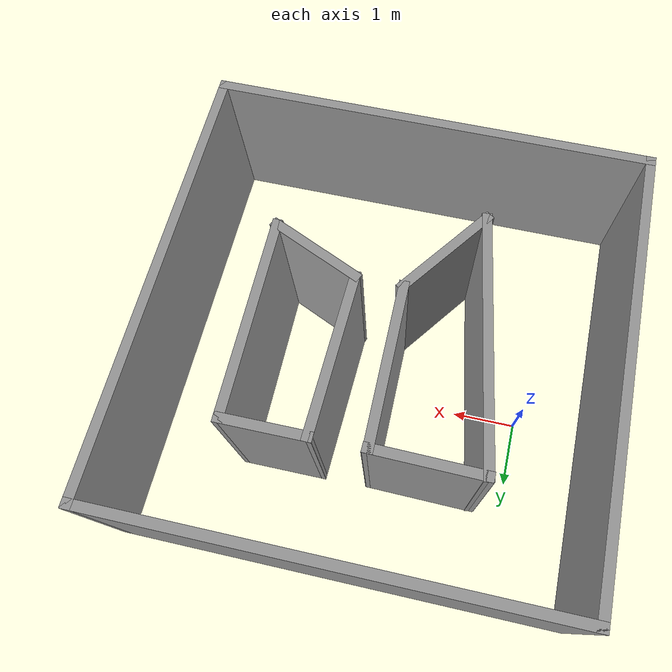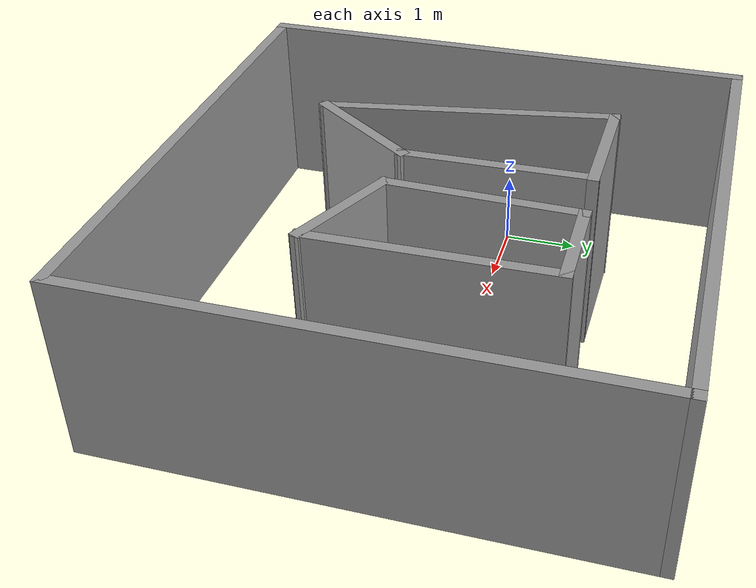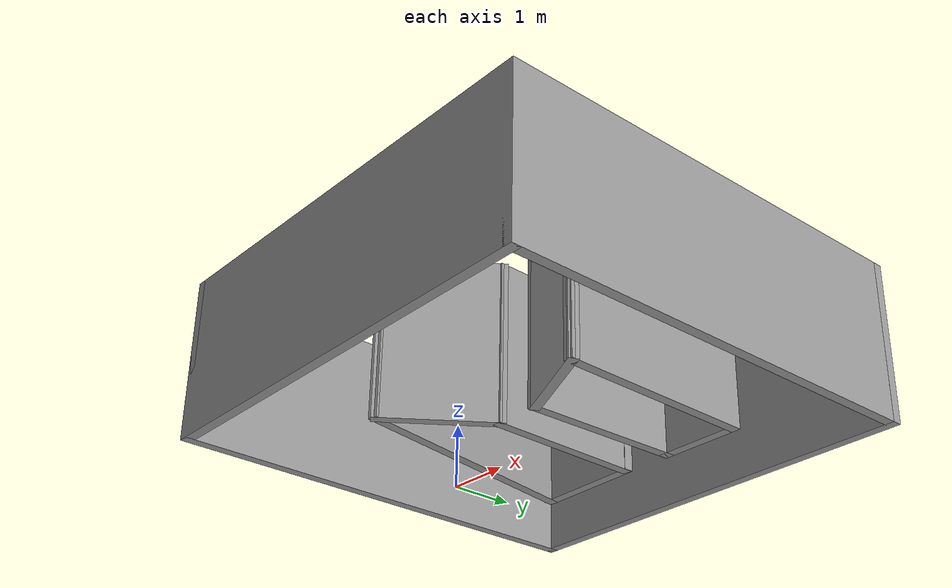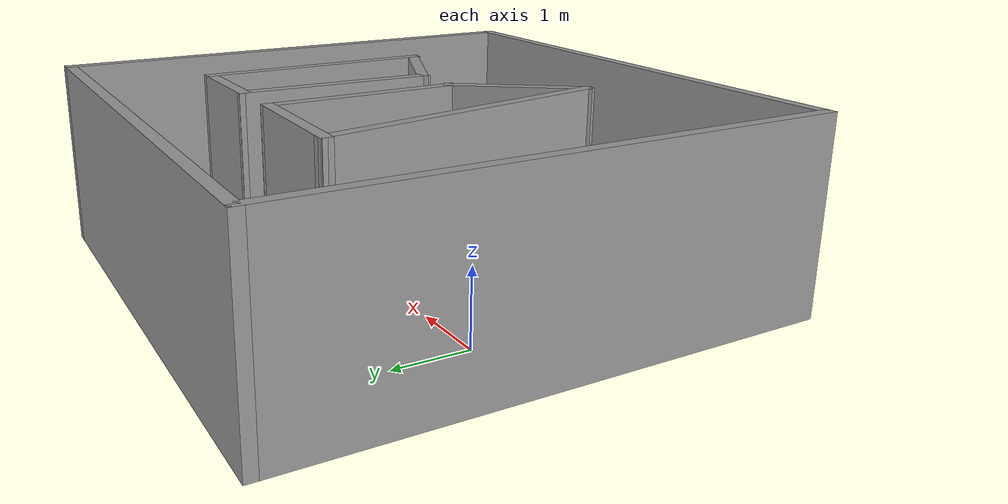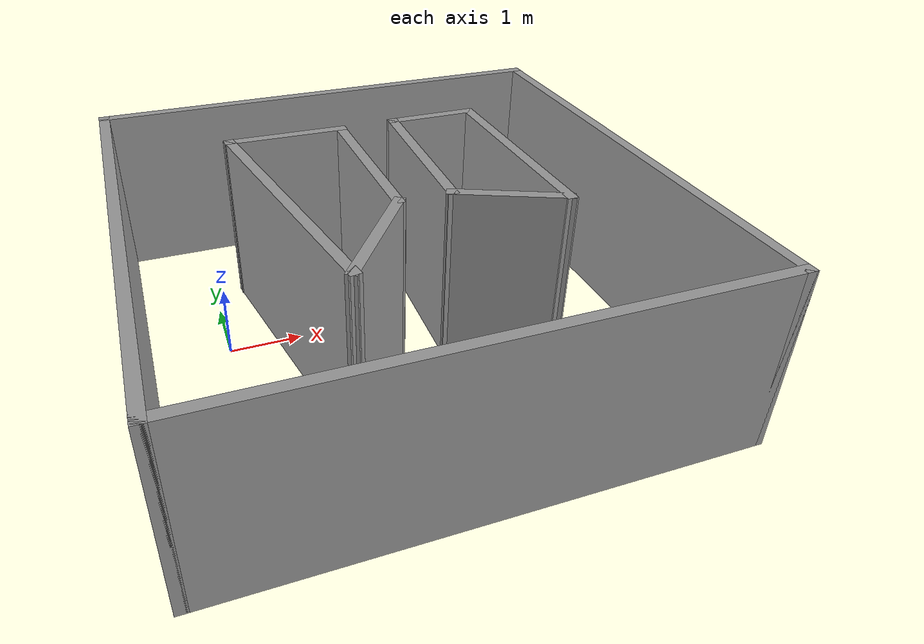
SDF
<?xml version='1.0'?>
<sdf version='1.7'>
  <model name='like_maze_map7'>
    <pose>2.28049 -0.451062 0 0 -0 0</pose>
    <link name='Wall_0'>
      <collision name='Wall_0_Collision'>
        <geometry>
          <box>
            <size>7 0.15 2.5</size>
          </box>
        </geometry>
        <pose>0 0 1.25 0 -0 0</pose>
      </collision>
      <visual name='Wall_0_Visual'>
        <pose>0 0 1.25 0 -0 0</pose>
        <geometry>
          <box>
            <size>7 0.15 2.5</size>
          </box>
        </geometry>
        <material>
          <script>
            <uri>file://media/materials/scripts/gazebo.material</uri>
            <name>Gazebo/Grey</name>
          </script>
          <ambient>1 1 1 1</ambient>
        </material>
        <meta>
          <layer>0</layer>
        </meta>
      </visual>
      <pose>-3.425 -0 0 0 -0 -1.5708</pose>
    </link>
    <link name='Wall_2'>
      <collision name='Wall_2_Collision'>
        <geometry>
          <box>
            <size>7 0.15 2.5</size>
          </box>
        </geometry>
        <pose>0 0 1.25 0 -0 0</pose>
      </collision>
      <visual name='Wall_2_Visual'>
        <pose>0 0 1.25 0 -0 0</pose>
        <geometry>
          <box>
            <size>7 0.15 2.5</size>
          </box>
        </geometry>
        <material>
          <script>
            <uri>file://media/materials/scripts/gazebo.material</uri>
            <name>Gazebo/Grey</name>
          </script>
          <ambient>1 1 1 1</ambient>
        </material>
        <meta>
          <layer>0</layer>
        </meta>
      </visual>
      <pose>0 -3.425 0 0 -0 0</pose>
    </link>
    <link name='Wall_24'>
      <collision name='Wall_24_Collision'>
        <geometry>
          <box>
            <size>4.01538 0.15 2.5</size>
          </box>
        </geometry>
        <pose>0 0 1.25 0 -0 0</pose>
      </collision>
      <visual name='Wall_24_Visual'>
        <pose>0 0 1.25 0 -0 0</pose>
        <geometry>
          <box>
            <size>4.01538 0.15 2.5</size>
          </box>
        </geometry>
        <material>
          <script>
            <uri>file://media/materials/scripts/gazebo.material</uri>
            <name>Gazebo/Grey</name>
          </script>
          <ambient>1 1 1 1</ambient>
        </material>
        <meta>
          <layer>0</layer>
        </meta>
      </visual>
      <pose>-1.45779 0.017957 0 0 -0 1.74371</pose>
    </link>
    <link name='Wall_3'>
      <collision name='Wall_3_Collision'>
        <geometry>
          <box>
            <size>7 0.15 2.5</size>
          </box>
        </geometry>
        <pose>0 0 1.25 0 -0 0</pose>
      </collision>
      <visual name='Wall_3_Visual'>
        <pose>0 0 1.25 0 -0 0</pose>
        <geometry>
          <box>
            <size>7 0.15 2.5</size>
          </box>
        </geometry>
        <material>
          <script>
            <uri>file://media/materials/scripts/gazebo.material</uri>
            <name>Gazebo/Grey</name>
          </script>
          <ambient>1 1 1 1</ambient>
        </material>
        <meta>
          <layer>0</layer>
        </meta>
      </visual>
      <pose>3.425 -0 0 0 -0 1.5708</pose>
    </link>
    <link name='Wall_35'>
      <collision name='Wall_35_Collision'>
        <geometry>
          <box>
            <size>3.18404 0.15 2.5</size>
          </box>
        </geometry>
        <pose>0 0 1.25 0 -0 0</pose>
      </collision>
      <visual name='Wall_35_Visual'>
        <pose>0 0 1.25 0 -0 0</pose>
        <geometry>
          <box>
            <size>3.18404 0.15 2.5</size>
          </box>
        </geometry>
        <material>
          <script>
            <uri>file://media/materials/scripts/gazebo.material</uri>
            <name>Gazebo/Grey</name>
          </script>
          <ambient>1 1 1 1</ambient>
        </material>
        <meta>
          <layer>0</layer>
        </meta>
      </visual>
      <pose>1.88979 0.402701 0 0 -0 -1.56007</pose>
    </link>
    <link name='Wall_37'>
      <collision name='Wall_37_Collision'>
        <geometry>
          <box>
            <size>1.60792 0.15 2.5</size>
          </box>
        </geometry>
        <pose>0 0 1.25 0 -0 0</pose>
      </collision>
      <visual name='Wall_37_Visual'>
        <pose>0 0 1.25 0 -0 0</pose>
        <geometry>
          <box>
            <size>1.60792 0.15 2.5</size>
          </box>
        </geometry>
        <material>
          <script>
            <uri>file://media/materials/scripts/gazebo.material</uri>
            <name>Gazebo/Grey</name>
          </script>
          <ambient>1 1 1 1</ambient>
        </material>
        <meta>
          <layer>0</layer>
        </meta>
      </visual>
      <pose>1.23924 -0.819693 0 0 -0 -0.415872</pose>
    </link>
    <link name='Wall_4'>
      <collision name='Wall_4_Collision'>
        <geometry>
          <box>
            <size>7 0.15 2.5</size>
          </box>
        </geometry>
        <pose>0 0 1.25 0 -0 0</pose>
      </collision>
      <visual name='Wall_4_Visual'>
        <pose>0 0 1.25 0 -0 0</pose>
        <geometry>
          <box>
            <size>7 0.15 2.5</size>
          </box>
        </geometry>
        <material>
          <script>
            <uri>file://media/materials/scripts/gazebo.material</uri>
            <name>Gazebo/Grey</name>
          </script>
          <ambient>1 1 1 1</ambient>
        </material>
        <meta>
          <layer>0</layer>
        </meta>
      </visual>
      <pose>0 3.425 0 0 -0 3.14159</pose>
    </link>
    <link name='Wall_41'>
      <collision name='Wall_41_Collision'>
        <geometry>
          <box>
            <size>1.77465 0.15 2.5</size>
          </box>
        </geometry>
        <pose>0 0 1.25 0 -0 0</pose>
      </collision>
      <visual name='Wall_41_Visual'>
        <pose>0 0 1.25 0 -0 0</pose>
        <geometry>
          <box>
            <size>1.77465 0.15 2.5</size>
          </box>
        </geometry>
        <material>
          <script>
            <uri>file://media/materials/scripts/gazebo.material</uri>
            <name>Gazebo/Grey</name>
          </script>
          <ambient>1 1 1 1</ambient>
        </material>
        <meta>
          <layer>0</layer>
        </meta>
      </visual>
      <pose>-0.978098 1.90896 0 0 -0 -0.015837</pose>
    </link>
    <link name='Wall_43'>
      <collision name='Wall_43_Collision'>
        <geometry>
          <box>
            <size>2.56871 0.15 2.5</size>
          </box>
        </geometry>
        <pose>0 0 1.25 0 -0 0</pose>
      </collision>
      <visual name='Wall_43_Visual'>
        <pose>0 0 1.25 0 -0 0</pose>
        <geometry>
          <box>
            <size>2.56871 0.15 2.5</size>
          </box>
        </geometry>
        <material>
          <script>
            <uri>file://media/materials/scripts/gazebo.material</uri>
            <name>Gazebo/Grey</name>
          </script>
          <ambient>1 1 1 1</ambient>
        </material>
        <meta>
          <layer>0</layer>
        </meta>
      </visual>
      <pose>-0.159062 0.686838 0 0 -0 -1.55807</pose>
    </link>
    <link name='Wall_44'>
      <collision name='Wall_44_Collision'>
        <geometry>
          <box>
            <size>1.83509 0.15 2.5</size>
          </box>
        </geometry>
        <pose>0 0 1.25 0 -0 0</pose>
      </collision>
      <visual name='Wall_44_Visual'>
        <pose>0 0 1.25 0 -0 0</pose>
        <geometry>
          <box>
            <size>1.83509 0.15 2.5</size>
          </box>
        </geometry>
        <material>
          <script>
            <uri>file://media/materials/scripts/gazebo.material</uri>
            <name>Gazebo/Grey</name>
          </script>
          <ambient>1 1 1 1</ambient>
        </material>
        <meta>
          <layer>0</layer>
        </meta>
      </visual>
      <pose>-0.630176 -1.20416 0 0 -0 -2.19889</pose>
    </link>
    <link name='Wall_51'>
      <collision name='Wall_51_Collision'>
        <geometry>
          <box>
            <size>1.3713 0.15 2.5</size>
          </box>
        </geometry>
        <pose>0 0 1.25 0 -0 0</pose>
      </collision>
      <visual name='Wall_51_Visual'>
        <pose>0 0 1.25 0 -0 0</pose>
        <geometry>
          <box>
            <size>1.3713 0.15 2.5</size>
          </box>
        </geometry>
        <material>
          <script>
            <uri>file://media/materials/scripts/gazebo.material</uri>
            <name>Gazebo/Grey</name>
          </script>
          <ambient>1 1 1 1</ambient>
        </material>
        <meta>
          <layer>0</layer>
        </meta>
      </visual>
      <pose>1.25541 1.9176 0 0 -0 -3.13834</pose>
    </link>
    <link name='Wall_53'>
      <collision name='Wall_53_Collision'>
        <geometry>
          <box>
            <size>2.59189 0.15 2.5</size>
          </box>
        </geometry>
        <pose>0 0 1.25 0 -0 0</pose>
      </collision>
      <visual name='Wall_53_Visual'>
        <pose>0 0 1.25 0 -0 0</pose>
        <geometry>
          <box>
            <size>2.59189 0.15 2.5</size>
          </box>
        </geometry>
        <material>
          <script>
            <uri>file://media/materials/scripts/gazebo.material</uri>
            <name>Gazebo/Grey</name>
          </script>
          <ambient>1 1 1 1</ambient>
        </material>
        <meta>
          <layer>0</layer>
        </meta>
      </visual>
      <pose>0.608586 0.695208 0 0 -0 -1.60043</pose>
    </link>
    <static>1</static>
  </model>
</sdf>
